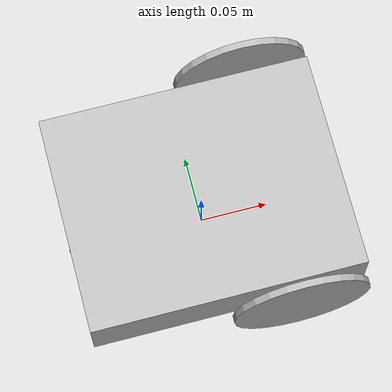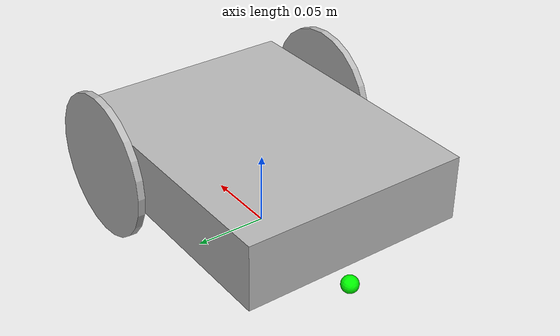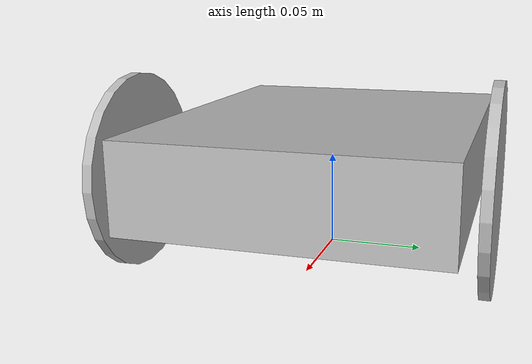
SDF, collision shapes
<?xml version='1.0'?>
<sdf version='1.4'>
    <model name='puzzlebot' canonical_link='chassis'>

        <!--chassis-->
        <link name='chassis'>
            <pose relative_to='__model__'>0 0 0.05 1.5708 0 1.5708</pose>

            <inertial> <!--inertial properties of the link mass, inertia matix-->
                <mass>0.8</mass>
                <pose>-0.05 0 0 0 0 0</pose>
                <inertia>
                    <ixx>0.004</ixx>
                    <iyy>0.004</iyy>
                    <izz>0.004</izz>
                    <ixy>0</ixy>
                    <ixz>0</ixz>
                    <iyz>0</iyz>
                </inertia>
            </inertial>

            <visual name='visual'>
                <geometry>
                    <mesh>
                        <uri>./meshes/chassis.stl</uri>
                    </mesh>
                </geometry>
            </visual>

            <collision name='collision'>
                <pose>0 0 0 0 1.5708 1.5708</pose>
                <geometry>
                    <box>
                        <size>0.2 0.16 0.046</size>
                    </box>
                </geometry>
            </collision>

            <sensor type="camera" name="camera">
                <pose relative_to='camera_frame'>0 0 0 0 -1.5708 -1.5708</pose>
                <camera>
                    <horizontal_fov>1.047</horizontal_fov>
                    <image>
                        <width>1280</width>
                        <height>720</height>
                    </image>
                    <clip>
                        <near>0.1</near>
                        <far>100</far>
                    </clip>
                </camera>
                <always_on>1</always_on>
                <update_rate>10</update_rate>
                <visualize>false</visualize>
            </sensor>
            <sensor name="rplidar" type="gpu_lidar">
                <pose relative_to='rplidar_frame'>0 0 0 0 0 0</pose>
                <update_rate>10</update_rate>
                <ray>
                    <scan>
                    <horizontal>
                        <samples>720</samples>
                        <resolution>1</resolution>
                        <min_angle>-3.14</min_angle>
                        <max_angle>3.14</max_angle>
                    </horizontal>
                    <vertical>
                        <samples>1</samples>
                        <resolution>1</resolution>
                        <min_angle>0</min_angle>
                        <max_angle>0</max_angle>
                    </vertical>
                    </scan>
                    <range>
                    <min>0.1</min>
                    <max>12.0</max>
                    <resolution>0.01</resolution>
                    </range>
                </ray>
                <always_on>1</always_on>
                <visualize>true</visualize>
            </sensor>
        </link>

        <!--Right wheel-->
        <link name='right_wheel'>
            <pose relative_to="chassis">-0.09 0 0.05 0 1.5708 0</pose> <!--angles are in radian-->

            <inertial>
                <mass>0.05</mass>
                <inertia>
                    <ixx>0.002</ixx>
                    <iyy>0.002</iyy>
                    <izz>0.002</izz>
                    <ixy>0</ixy>
                    <ixz>0</ixz>
                    <iyz>0</iyz>
                </inertia>
            </inertial>

            <visual name='visual'>
                <geometry>
                    <mesh>
                        <uri>./meshes/wheel.stl</uri>
                    </mesh>
                </geometry>
                <material name="black">
                    <color rgba="0 0 0 1.0"/>
                </material>
            </visual>

            <collision name='collision'>
                <pose>0 -0.0025 0 0 0 0</pose> <!--angles are in radian-->
                <geometry>
                    <cylinder>
                        <radius>0.05</radius>
                        <length>0.005</length>
                    </cylinder>
                </geometry>
                <surface>
                    <friction>
                        <ode>
                            <mu>1.0</mu>
                            <mu2>1.0</mu2>
                        </ode>
                    </friction>
                </surface>
            </collision>

        </link>

        <!--Left wheel-->
        <link name='left_wheel'>
            <pose relative_to="chassis">0.09 0 0.05 -1.5708 0 1.5708</pose> <!--angles are in radian-->

            <inertial>
                <mass>0.05</mass>
                <inertia>
                    <ixx>0.002</ixx>
                    <iyy>0.002</iyy>
                    <izz>0.002</izz>
                    <ixy>0</ixy>
                    <ixz>0</ixz>
                    <iyz>0</iyz>
                </inertia>
            </inertial>

            <visual name='visual'>
                <geometry>
                    <mesh>
                        <uri>./meshes/wheel.stl</uri>
                    </mesh>
                </geometry>
                <material name="black">
                    <color rgba="0 0 0 1.0"/>
                </material>
            </visual>

            <collision name='collision'>
                <pose>0 -0.0025 0 0 0 0</pose> <!--angles are in radian-->
                <geometry>
                    <cylinder>
                        <radius>0.05</radius>
                        <length>0.005</length>
                    </cylinder>
                </geometry>
                <surface>
                    <friction>
                        <ode>
                            <mu>1.0</mu>
                            <mu2>1.0</mu2>
                        </ode>
                    </friction>
                </surface>
            </collision>

        </link>

        <!--arbitrary frame-->
        <frame name="caster_frame" attached_to='chassis'>
            <pose>0 -0.044 -0.095 0 0 0</pose>
        </frame>

        <!--caster wheel-->
        <link name='caster'>
            <pose relative_to='caster_frame'/>

            <inertial>
                <mass>0.01</mass>
                <inertia>
                    <ixx>0.0000025</ixx>
                    <iyy>0.0000025</iyy>
                    <izz>0.0000025</izz>
                    <ixy>0</ixy>
                    <ixz>0</ixz>
                    <iyz>0</iyz>
                </inertia>
            </inertial>

            <visual name='visual'>
                <geometry>
                    <sphere>
                        <radius>0.006</radius>
                    </sphere>
                </geometry>
                <material>
                    <ambient>0.0 1 0.0 1</ambient>
                    <diffuse>0.0 1 0.0 1</diffuse>
                    <specular>0.0 1 0.0 1</specular>
                </material>
            </visual>

            <collision name='collision'>
                <geometry>
                    <sphere>
                        <radius>0.006</radius>
                    </sphere>
                </geometry>
            </collision>
        </link>

        <!--left wheel joint-->
        <joint name='left_wheel_joint' type='revolute'>
            <pose relative_to='left_wheel'/>
            <parent>chassis</parent>
            <child>left_wheel</child>
            <axis>
                <xyz expressed_in='__model__'>0 1 0</xyz> <!--can be descired to any frame or even arbitrary frames-->
                <limit>
                    <lower>-1.79769e+308</lower>    <!--negative infinity-->
                    <upper>1.79769e+308</upper>     <!--positive infinity-->
                    <effort>1</effort>
                </limit>
               <dynamics>
                   <friction>0.1</friction>
               </dynamics>
            </axis>
        </joint>

        <!--right wheel joint-->
        <joint name='right_wheel_joint' type='revolute'>
            <pose relative_to='right_wheel'/>
            <parent>chassis</parent>
            <child>right_wheel</child>
            <axis>
                <xyz expressed_in='__model__'>0 1 0</xyz>
                <limit>
                    <lower>-1.79769e+308</lower>    <!--negative infinity-->
                    <upper>1.79769e+308</upper>     <!--positive infinity-->
                    <effort>1</effort>
                </limit>
               <dynamics>
                   <friction>0.1</friction>
               </dynamics>
            </axis>
        </joint>

        <!--caster wheel joint--> <!--pose defult value is the child-->
        <joint name='caster_wheel' type='ball'>
            <parent>chassis</parent>
            <child>caster</child>
        </joint>

        <!-- Puzzlebot differential drive plugin -->
        <plugin name="DiffDynamicPlugin" filename="libDiffDynamicPlugin.so">
            <leftJoint>left_wheel_joint</leftJoint>
            <rightJoint>right_wheel_joint</rightJoint>
            <cmd_R_topic>VelocitySetR</cmd_R_topic>
            <cmd_L_topic>VelocitySetL</cmd_L_topic>
            <cmd_vel_topic>cmd_vel</cmd_vel_topic>
            <enc_R_topic>VelocityEncR</enc_R_topic>
            <enc_L_topic>VelocityEncL</enc_L_topic>
            <robot_vel_topic>robot_vel</robot_vel_topic>
            <mot_Vmax>5</mot_Vmax>
            <mot_J>0.0005</mot_J>
            <mot_R>2</mot_R>
            <mot_L>0.01</mot_L>
            <mot_K>0.01</mot_K>
            <mot_b>0.00001</mot_b>
            <mot_gear>34</mot_gear>
            <robot_width>0.18</robot_width>
            <wheel_radius>0.05</wheel_radius>
            <pid_Kp>0.1</pid_Kp>
            <pid_Ti>0.05</pid_Ti>
            <pid_Td>0</pid_Td>
            <input_type>1</input_type>
            <rate>100</rate>
        </plugin>

        <frame name="camera_frame" attached_to='chassis'>
            <pose>0 0.1 0.08 0 0 0</pose>
        </frame>

        <frame name="rplidar_frame" attached_to='chassis'>
            <pose>0 0.11 0.05 -1.5708 1.5708 0</pose>
        </frame>

        <plugin
            filename="gz-sim-sensors-system"
            name="gz::sim::systems::Sensors">
            <render_engine>ogre2</render_engine>
        </plugin>

    </model>

</sdf>
